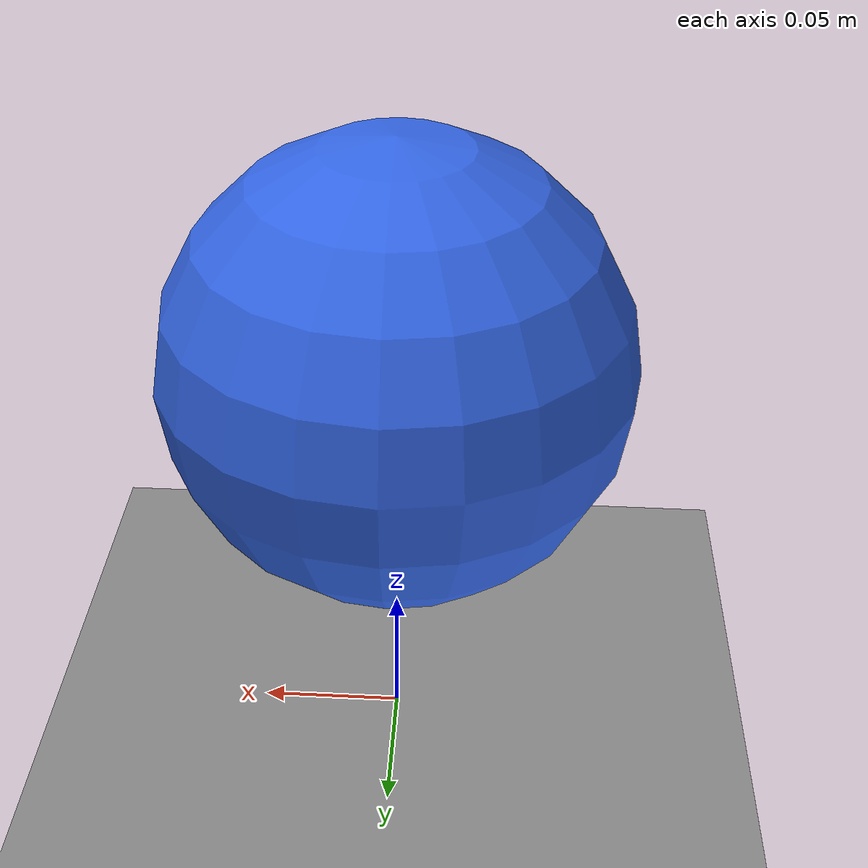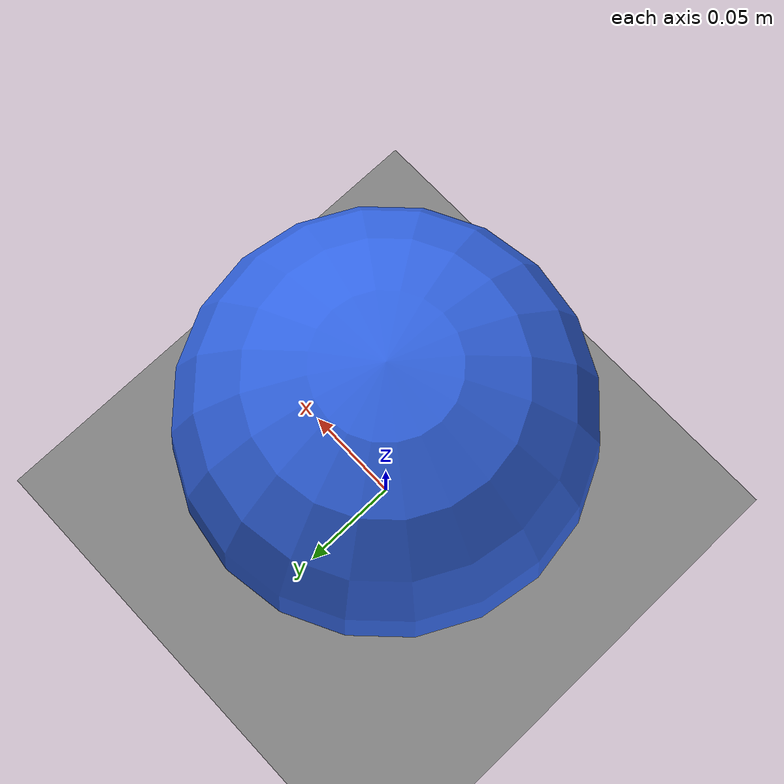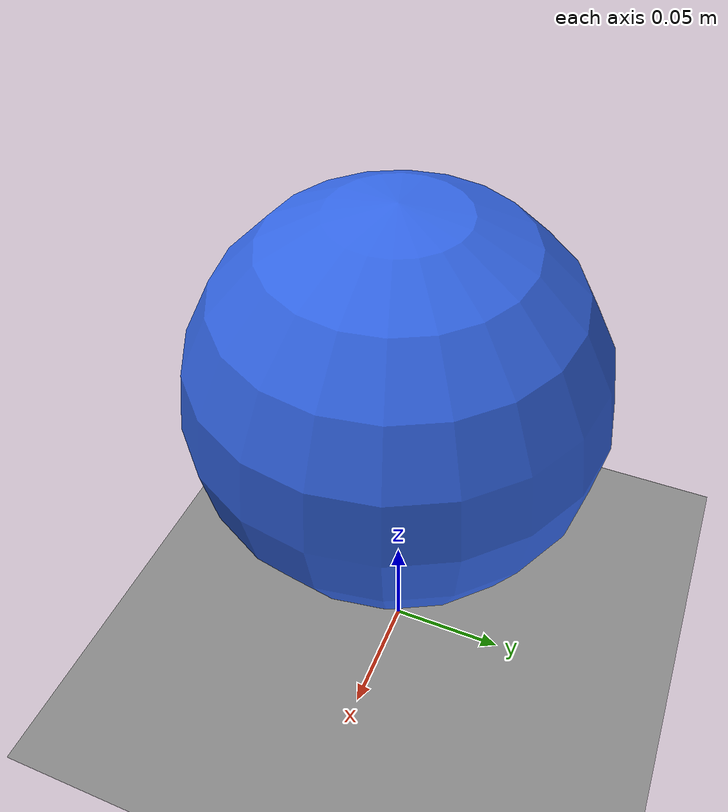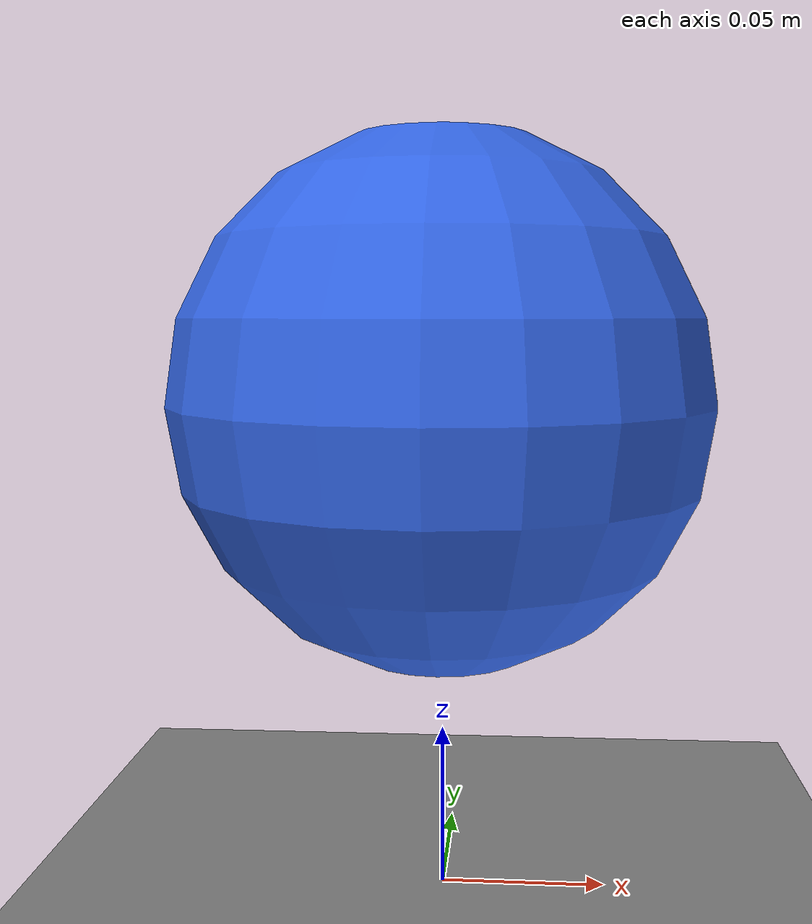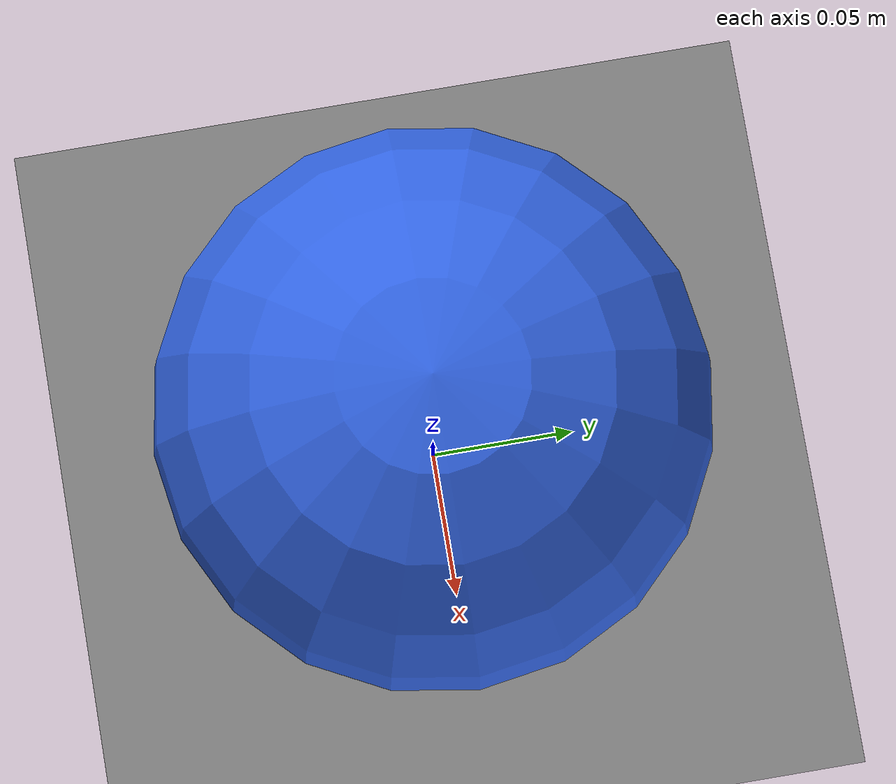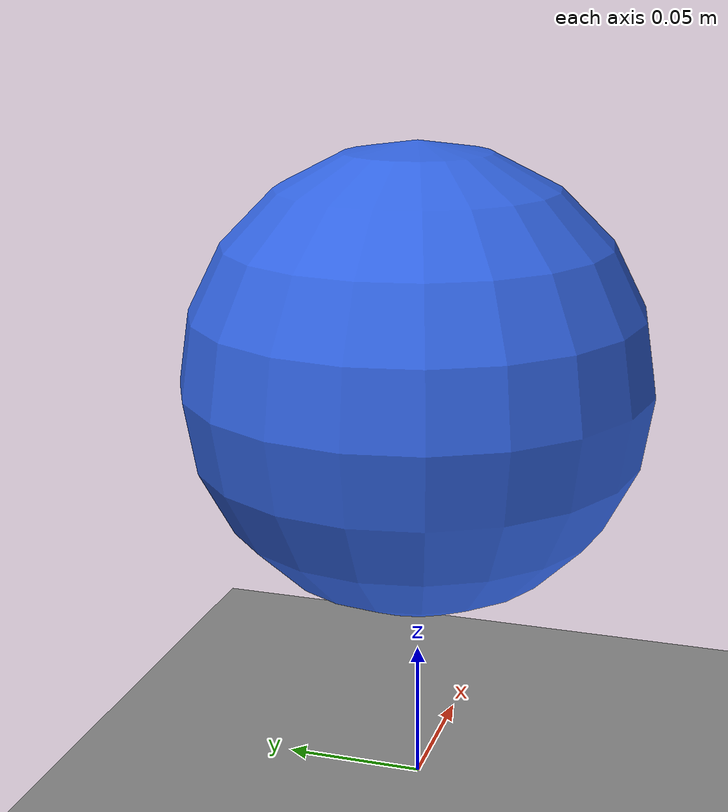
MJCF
<mujoco model="sphere">
    <option gravity="0 0 -9.81" timestep="{timestep}" integrator="RK4" tolerance="{tolerance}"/>

    <visual>
        <quality shadowsize="2048"/>
        <map znear="0.01"/>
    </visual>

    <asset>
        <!-- Floor texture -->
        <texture name="grid" type="2d"
                 builtin="checker"
                 width="512" height="512"
                 rgb1="0.2 0.2 0.2"
                 rgb2="0.85 0.85 0.85"/>
        <material name="floor_mat"
                  texture="grid"
                  texrepeat="12 12"
                  reflectance="0.15"/>

        <!-- Sphere material -->
        <material name="sphere_mat"
                  rgba="0.2 0.4 0.9 1"
                  specular="0.6"
                  shininess="0.8"/>
    </asset>

    <worldbody>
        <!-- Lights -->
        <light name="sun"
               pos="0 0 5"
               dir="0 0 -1"
               diffuse="1 1 1"
               specular="0.3 0.3 0.3"/>

        <light name="fill"
               pos="2 2 3"
               diffuse="0.3 0.3 0.3"/>

        <!-- Camera -->
        <camera name="angled_view"
                pos="{camera_pos_x} {camera_pos_y} {camera_pos_z}"
                xyaxes="0.7 0.7 0  -0.3 0.3 0.9"/>

        <!-- Ground -->
        <geom name="ground"
              type="plane"
              size="5 5 0.1"
              material="floor_mat"/>

        <!-- Sphere -->
        <body name="sphere" pos="0 0 0.15">
            <joint type="free" damping="0.015"/>
            <geom type="sphere"
                  size="0.08"
                  mass="1"
                  material="sphere_mat"
                  />
        </body>
    </worldbody>
</mujoco>
